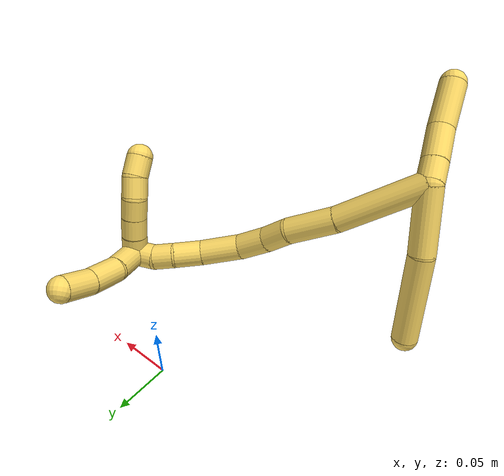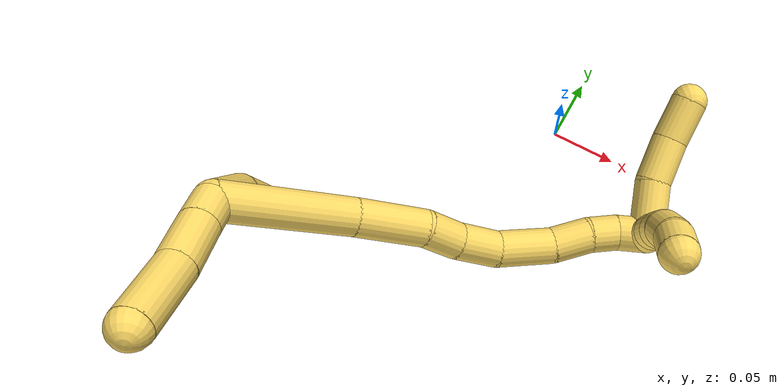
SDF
<sdf version="1.7">
 <world name="default">
  <model name="5">
   <static>0</static>
   <link name="5">
    <collision name="collision-cylinder-e_1_2_8">
     <pose>0.003377 0.01682 -0.026334 -2.57319 0.107646 -0.364768</pose>
     <geometry><cylinder><radius>0.0125</radius><length>0.062858</length></cylinder></geometry>
     <surface>
      <friction><ode><mu>1.16</mu><mu2>1.16</mu2><slip1>0</slip1><slip2>0</slip2></ode></friction>
      <contact><ode><kp>1e+06</kp><kd>1</kd><max_vel>0</max_vel><min_depth>0.001</min_depth></ode></contact>
     </surface>
    </collision>
    <visual name="visual-cylinder-e_1_2_8">
     <pose>0.003377 0.01682 -0.026334 -2.57319 0.107646 -0.364768</pose>
     <geometry><cylinder><radius>0.0125</radius><length>0.062858</length></cylinder></geometry>
     <material><ambient>1 0.858824 0.4 1</ambient></material>
    </visual>
    <collision name="collision-cylinder-e_2_8_6">
     <pose>0.010707 0.063522 -0.084129 -2.38194 0.090866 -0.226792</pose>
     <geometry><cylinder><radius>0.0125</radius><length>0.087142</length></cylinder></geometry>
     <surface>
      <friction><ode><mu>1.16</mu><mu2>1.16</mu2><slip1>0</slip1><slip2>0</slip2></ode></friction>
      <contact><ode><kp>1e+06</kp><kd>1</kd><max_vel>0</max_vel><min_depth>0.001</min_depth></ode></contact>
     </surface>
    </collision>
    <visual name="visual-cylinder-e_2_8_6">
     <pose>0.010707 0.063522 -0.084129 -2.38194 0.090866 -0.226792</pose>
     <geometry><cylinder><radius>0.0125</radius><length>0.087142</length></cylinder></geometry>
     <material><ambient>1 0.858824 0.4 1</ambient></material>
    </visual>
    <collision name="collision-cylinder-e_1_2_9">
     <pose>0.002051 -0.000187 0.010469 0.017901 0.193406 0.001737</pose>
     <geometry><cylinder><radius>0.0125</radius><length>0.021339</length></cylinder></geometry>
     <surface>
      <friction><ode><mu>1.16</mu><mu2>1.16</mu2><slip1>0</slip1><slip2>0</slip2></ode></friction>
      <contact><ode><kp>1e+06</kp><kd>1</kd><max_vel>0</max_vel><min_depth>0.001</min_depth></ode></contact>
     </surface>
    </collision>
    <visual name="visual-cylinder-e_1_2_9">
     <pose>0.002051 -0.000187 0.010469 0.017901 0.193406 0.001737</pose>
     <geometry><cylinder><radius>0.0125</radius><length>0.021339</length></cylinder></geometry>
     <material><ambient>1 0.858824 0.4 1</ambient></material>
    </visual>
    <collision name="collision-cylinder-e_2_9_10">
     <pose>0.00699 -0.000433 0.037308 0.003538 0.174676 0.00031</pose>
     <geometry><cylinder><radius>0.0125</radius><length>0.033247</length></cylinder></geometry>
     <surface>
      <friction><ode><mu>1.16</mu><mu2>1.16</mu2><slip1>0</slip1><slip2>0</slip2></ode></friction>
      <contact><ode><kp>1e+06</kp><kd>1</kd><max_vel>0</max_vel><min_depth>0.001</min_depth></ode></contact>
     </surface>
    </collision>
    <visual name="visual-cylinder-e_2_9_10">
     <pose>0.00699 -0.000433 0.037308 0.003538 0.174676 0.00031</pose>
     <geometry><cylinder><radius>0.0125</radius><length>0.033247</length></cylinder></geometry>
     <material><ambient>1 0.858824 0.4 1</ambient></material>
    </visual>
    <collision name="collision-cylinder-e_3_10_5">
     <pose>0.014389 -0.003332 0.075751 0.128018 0.199952 0.012859</pose>
     <geometry><cylinder><radius>0.0125</radius><length>0.045414</length></cylinder></geometry>
     <surface>
      <friction><ode><mu>1.16</mu><mu2>1.16</mu2><slip1>0</slip1><slip2>0</slip2></ode></friction>
      <contact><ode><kp>1e+06</kp><kd>1</kd><max_vel>0</max_vel><min_depth>0.001</min_depth></ode></contact>
     </surface>
    </collision>
    <visual name="visual-cylinder-e_3_10_5">
     <pose>0.014389 -0.003332 0.075751 0.128018 0.199952 0.012859</pose>
     <geometry><cylinder><radius>0.0125</radius><length>0.045414</length></cylinder></geometry>
     <material><ambient>1 0.858824 0.4 1</ambient></material>
    </visual>
    <collision name="collision-cylinder-e_1_2_11">
     <pose>-0.033448 0.025147 -0.011911 -2.01316 -0.876907 1.27535</pose>
     <geometry><cylinder><radius>0.0125</radius><length>0.087016</length></cylinder></geometry>
     <surface>
      <friction><ode><mu>1.16</mu><mu2>1.16</mu2><slip1>0</slip1><slip2>0</slip2></ode></friction>
      <contact><ode><kp>1e+06</kp><kd>1</kd><max_vel>0</max_vel><min_depth>0.001</min_depth></ode></contact>
     </surface>
    </collision>
    <visual name="visual-cylinder-e_1_2_11">
     <pose>-0.033448 0.025147 -0.011911 -2.01316 -0.876907 1.27535</pose>
     <geometry><cylinder><radius>0.0125</radius><length>0.087016</length></cylinder></geometry>
     <material><ambient>1 0.858824 0.4 1</ambient></material>
    </visual>
    <collision name="collision-cylinder-e_2_11_12">
     <pose>-0.086268 0.063378 -0.027617 -1.85302 -0.957881 1.20962</pose>
     <geometry><cylinder><radius>0.0125</radius><length>0.047368</length></cylinder></geometry>
     <surface>
      <friction><ode><mu>1.16</mu><mu2>1.16</mu2><slip1>0</slip1><slip2>0</slip2></ode></friction>
      <contact><ode><kp>1e+06</kp><kd>1</kd><max_vel>0</max_vel><min_depth>0.001</min_depth></ode></contact>
     </surface>
    </collision>
    <visual name="visual-cylinder-e_2_11_12">
     <pose>-0.086268 0.063378 -0.027617 -1.85302 -0.957881 1.20962</pose>
     <geometry><cylinder><radius>0.0125</radius><length>0.047368</length></cylinder></geometry>
     <material><ambient>1 0.858824 0.4 1</ambient></material>
    </visual>
    <collision name="collision-cylinder-e_3_12_13">
     <pose>-0.114052 0.086108 -0.033583 -1.79237 -0.704958 0.862148</pose>
     <geometry><cylinder><radius>0.0125</radius><length>0.02596</length></cylinder></geometry>
     <surface>
      <friction><ode><mu>1.16</mu><mu2>1.16</mu2><slip1>0</slip1><slip2>0</slip2></ode></friction>
      <contact><ode><kp>1e+06</kp><kd>1</kd><max_vel>0</max_vel><min_depth>0.001</min_depth></ode></contact>
     </surface>
    </collision>
    <visual name="visual-cylinder-e_3_12_13">
     <pose>-0.114052 0.086108 -0.033583 -1.79237 -0.704958 0.862148</pose>
     <geometry><cylinder><radius>0.0125</radius><length>0.02596</length></cylinder></geometry>
     <material><ambient>1 0.858824 0.4 1</ambient></material>
    </visual>
    <collision name="collision-cylinder-e_4_13_14">
     <pose>-0.134267 0.10515 -0.038355 -1.84061 -0.880395 1.1085</pose>
     <geometry><cylinder><radius>0.0125</radius><length>0.030622</length></cylinder></geometry>
     <surface>
      <friction><ode><mu>1.16</mu><mu2>1.16</mu2><slip1>0</slip1><slip2>0</slip2></ode></friction>
      <contact><ode><kp>1e+06</kp><kd>1</kd><max_vel>0</max_vel><min_depth>0.001</min_depth></ode></contact>
     </surface>
    </collision>
    <visual name="visual-cylinder-e_4_13_14">
     <pose>-0.134267 0.10515 -0.038355 -1.84061 -0.880395 1.1085</pose>
     <geometry><cylinder><radius>0.0125</radius><length>0.030622</length></cylinder></geometry>
     <material><ambient>1 0.858824 0.4 1</ambient></material>
    </visual>
    <collision name="collision-cylinder-e_5_14_15">
     <pose>-0.16464 0.121174 -0.044614 -2.07546 -1.18371 1.70086</pose>
     <geometry><cylinder><radius>0.0125</radius><length>0.040103</length></cylinder></geometry>
     <surface>
      <friction><ode><mu>1.16</mu><mu2>1.16</mu2><slip1>0</slip1><slip2>0</slip2></ode></friction>
      <contact><ode><kp>1e+06</kp><kd>1</kd><max_vel>0</max_vel><min_depth>0.001</min_depth></ode></contact>
     </surface>
    </collision>
    <visual name="visual-cylinder-e_5_14_15">
     <pose>-0.16464 0.121174 -0.044614 -2.07546 -1.18371 1.70086</pose>
     <geometry><cylinder><radius>0.0125</radius><length>0.040103</length></cylinder></geometry>
     <material><ambient>1 0.858824 0.4 1</ambient></material>
    </visual>
    <collision name="collision-cylinder-e_6_15_16">
     <pose>-0.196716 0.128945 -0.05115 -2.76256 -1.34552 2.66909</pose>
     <geometry><cylinder><radius>0.0125</radius><length>0.027717</length></cylinder></geometry>
     <surface>
      <friction><ode><mu>1.16</mu><mu2>1.16</mu2><slip1>0</slip1><slip2>0</slip2></ode></friction>
      <contact><ode><kp>1e+06</kp><kd>1</kd><max_vel>0</max_vel><min_depth>0.001</min_depth></ode></contact>
     </surface>
    </collision>
    <visual name="visual-cylinder-e_6_15_16">
     <pose>-0.196716 0.128945 -0.05115 -2.76256 -1.34552 2.66909</pose>
     <geometry><cylinder><radius>0.0125</radius><length>0.027717</length></cylinder></geometry>
     <material><ambient>1 0.858824 0.4 1</ambient></material>
    </visual>
    <collision name="collision-cylinder-e_7_16_17">
     <pose>-0.219817 0.132659 -0.055403 -2.06302 -1.27583 1.78323</pose>
     <geometry><cylinder><radius>0.0125</radius><length>0.020052</length></cylinder></geometry>
     <surface>
      <friction><ode><mu>1.16</mu><mu2>1.16</mu2><slip1>0</slip1><slip2>0</slip2></ode></friction>
      <contact><ode><kp>1e+06</kp><kd>1</kd><max_vel>0</max_vel><min_depth>0.001</min_depth></ode></contact>
     </surface>
    </collision>
    <visual name="visual-cylinder-e_7_16_17">
     <pose>-0.219817 0.132659 -0.055403 -2.06302 -1.27583 1.78323</pose>
     <geometry><cylinder><radius>0.0125</radius><length>0.020052</length></cylinder></geometry>
     <material><ambient>1 0.858824 0.4 1</ambient></material>
    </visual>
    <collision name="collision-cylinder-e_8_17_1">
     <pose>-0.239532 0.13782 -0.055111 -0.998421 -1.27508 0.767733</pose>
     <geometry><cylinder><radius>0.0125</radius><length>0.021163</length></cylinder></geometry>
     <surface>
      <friction><ode><mu>1.16</mu><mu2>1.16</mu2><slip1>0</slip1><slip2>0</slip2></ode></friction>
      <contact><ode><kp>1e+06</kp><kd>1</kd><max_vel>0</max_vel><min_depth>0.001</min_depth></ode></contact>
     </surface>
    </collision>
    <visual name="visual-cylinder-e_8_17_1">
     <pose>-0.239532 0.13782 -0.055111 -0.998421 -1.27508 0.767733</pose>
     <geometry><cylinder><radius>0.0125</radius><length>0.021163</length></cylinder></geometry>
     <material><ambient>1 0.858824 0.4 1</ambient></material>
    </visual>
    <collision name="collision-cylinder-e_1_1_18">
     <pose>-0.255845 0.127908 -0.066071 2.36124 -0.335204 -0.780571</pose>
     <geometry><cylinder><radius>0.0125</radius><length>0.037642</length></cylinder></geometry>
     <surface>
      <friction><ode><mu>1.16</mu><mu2>1.16</mu2><slip1>0</slip1><slip2>0</slip2></ode></friction>
      <contact><ode><kp>1e+06</kp><kd>1</kd><max_vel>0</max_vel><min_depth>0.001</min_depth></ode></contact>
     </surface>
    </collision>
    <visual name="visual-cylinder-e_1_1_18">
     <pose>-0.255845 0.127908 -0.066071 2.36124 -0.335204 -0.780571</pose>
     <geometry><cylinder><radius>0.0125</radius><length>0.037642</length></cylinder></geometry>
     <material><ambient>1 0.858824 0.4 1</ambient></material>
    </visual>
    <collision name="collision-cylinder-e_2_18_19">
     <pose>-0.270911 0.10585 -0.088044 2.34502 -0.586264 -1.2445</pose>
     <geometry><cylinder><radius>0.0125</radius><length>0.032081</length></cylinder></geometry>
     <surface>
      <friction><ode><mu>1.16</mu><mu2>1.16</mu2><slip1>0</slip1><slip2>0</slip2></ode></friction>
      <contact><ode><kp>1e+06</kp><kd>1</kd><max_vel>0</max_vel><min_depth>0.001</min_depth></ode></contact>
     </surface>
    </collision>
    <visual name="visual-cylinder-e_2_18_19">
     <pose>-0.270911 0.10585 -0.088044 2.34502 -0.586264 -1.2445</pose>
     <geometry><cylinder><radius>0.0125</radius><length>0.032081</length></cylinder></geometry>
     <material><ambient>1 0.858824 0.4 1</ambient></material>
    </visual>
    <collision name="collision-cylinder-e_3_19_4">
     <pose>-0.288966 0.086322 -0.104123 2.16482 -0.651565 -1.13268</pose>
     <geometry><cylinder><radius>0.0125</radius><length>0.030278</length></cylinder></geometry>
     <surface>
      <friction><ode><mu>1.16</mu><mu2>1.16</mu2><slip1>0</slip1><slip2>0</slip2></ode></friction>
      <contact><ode><kp>1e+06</kp><kd>1</kd><max_vel>0</max_vel><min_depth>0.001</min_depth></ode></contact>
     </surface>
    </collision>
    <visual name="visual-cylinder-e_3_19_4">
     <pose>-0.288966 0.086322 -0.104123 2.16482 -0.651565 -1.13268</pose>
     <geometry><cylinder><radius>0.0125</radius><length>0.030278</length></cylinder></geometry>
     <material><ambient>1 0.858824 0.4 1</ambient></material>
    </visual>
    <collision name="collision-cylinder-e_1_1_20">
     <pose>-0.250582 0.133066 -0.046718 0.829687 -0.092907 -0.04094</pose>
     <geometry><cylinder><radius>0.0125</radius><length>0.02</length></cylinder></geometry>
     <surface>
      <friction><ode><mu>1.16</mu><mu2>1.16</mu2><slip1>0</slip1><slip2>0</slip2></ode></friction>
      <contact><ode><kp>1e+06</kp><kd>1</kd><max_vel>0</max_vel><min_depth>0.001</min_depth></ode></contact>
     </surface>
    </collision>
    <visual name="visual-cylinder-e_1_1_20">
     <pose>-0.250582 0.133066 -0.046718 0.829687 -0.092907 -0.04094</pose>
     <geometry><cylinder><radius>0.0125</radius><length>0.02</length></cylinder></geometry>
     <material><ambient>1 0.858824 0.4 1</ambient></material>
    </visual>
    <collision name="collision-cylinder-e_2_20_21">
     <pose>-0.252238 0.118866 -0.032753 0.757856 -0.0729 -0.029037</pose>
     <geometry><cylinder><radius>0.0125</radius><length>0.02</length></cylinder></geometry>
     <surface>
      <friction><ode><mu>1.16</mu><mu2>1.16</mu2><slip1>0</slip1><slip2>0</slip2></ode></friction>
      <contact><ode><kp>1e+06</kp><kd>1</kd><max_vel>0</max_vel><min_depth>0.001</min_depth></ode></contact>
     </surface>
    </collision>
    <visual name="visual-cylinder-e_2_20_21">
     <pose>-0.252238 0.118866 -0.032753 0.757856 -0.0729 -0.029037</pose>
     <geometry><cylinder><radius>0.0125</radius><length>0.02</length></cylinder></geometry>
     <material><ambient>1 0.858824 0.4 1</ambient></material>
    </visual>
    <collision name="collision-cylinder-e_3_21_22">
     <pose>-0.253381 0.105274 -0.01813 0.739883 -0.041487 -0.01609</pose>
     <geometry><cylinder><radius>0.0125</radius><length>0.02</length></cylinder></geometry>
     <surface>
      <friction><ode><mu>1.16</mu><mu2>1.16</mu2><slip1>0</slip1><slip2>0</slip2></ode></friction>
      <contact><ode><kp>1e+06</kp><kd>1</kd><max_vel>0</max_vel><min_depth>0.001</min_depth></ode></contact>
     </surface>
    </collision>
    <visual name="visual-cylinder-e_3_21_22">
     <pose>-0.253381 0.105274 -0.01813 0.739883 -0.041487 -0.01609</pose>
     <geometry><cylinder><radius>0.0125</radius><length>0.02</length></cylinder></geometry>
     <material><ambient>1 0.858824 0.4 1</ambient></material>
    </visual>
    <collision name="collision-cylinder-e_4_22_23">
     <pose>-0.254677 0.094254 -0.001758 0.444549 -0.0882 -0.019946</pose>
     <geometry><cylinder><radius>0.0125</radius><length>0.02</length></cylinder></geometry>
     <surface>
      <friction><ode><mu>1.16</mu><mu2>1.16</mu2><slip1>0</slip1><slip2>0</slip2></ode></friction>
      <contact><ode><kp>1e+06</kp><kd>1</kd><max_vel>0</max_vel><min_depth>0.001</min_depth></ode></contact>
     </surface>
    </collision>
    <visual name="visual-cylinder-e_4_22_23">
     <pose>-0.254677 0.094254 -0.001758 0.444549 -0.0882 -0.019946</pose>
     <geometry><cylinder><radius>0.0125</radius><length>0.02</length></cylinder></geometry>
     <material><ambient>1 0.858824 0.4 1</ambient></material>
    </visual>
    <collision name="collision-cylinder-e_5_23_3">
     <pose>-0.254622 0.087654 0.016918 0.234756 0.09368 0.011055</pose>
     <geometry><cylinder><radius>0.0125</radius><length>0.02</length></cylinder></geometry>
     <surface>
      <friction><ode><mu>1.16</mu><mu2>1.16</mu2><slip1>0</slip1><slip2>0</slip2></ode></friction>
      <contact><ode><kp>1e+06</kp><kd>1</kd><max_vel>0</max_vel><min_depth>0.001</min_depth></ode></contact>
     </surface>
    </collision>
    <visual name="visual-cylinder-e_5_23_3">
     <pose>-0.254622 0.087654 0.016918 0.234756 0.09368 0.011055</pose>
     <geometry><cylinder><radius>0.0125</radius><length>0.02</length></cylinder></geometry>
     <material><ambient>1 0.858824 0.4 1</ambient></material>
    </visual>
    <collision name="collision-sphere-3">
     <pose>-0.253687 0.085339 0.026602 0 -0 0</pose>
     <geometry><sphere><radius>0.0125</radius></sphere></geometry>
     <surface>
      <friction><ode><mu>1.16</mu><mu2>1.16</mu2><slip1>0</slip1><slip2>0</slip2></ode></friction>
      <contact><ode><kp>1e+06</kp><kd>1</kd><max_vel>0</max_vel><min_depth>0.001</min_depth></ode></contact>
     </surface>
    </collision>
    <visual name="visual-sphere-3">
     <pose>-0.253687 0.085339 0.026602 0 -0 0</pose>
     <geometry><sphere><radius>0.0125</radius></sphere></geometry>
     <material><ambient>1 0.858824 0.4 1</ambient></material>
    </visual>
    <collision name="collision-sphere-23">
     <pose>-0.255557 0.08997 0.007235 0 -0 0</pose>
     <geometry><sphere><radius>0.0125</radius></sphere></geometry>
     <surface>
      <friction><ode><mu>1.16</mu><mu2>1.16</mu2><slip1>0</slip1><slip2>0</slip2></ode></friction>
      <contact><ode><kp>1e+06</kp><kd>1</kd><max_vel>0</max_vel><min_depth>0.001</min_depth></ode></contact>
     </surface>
    </collision>
    <visual name="visual-sphere-23">
     <pose>-0.255557 0.08997 0.007235 0 -0 0</pose>
     <geometry><sphere><radius>0.0125</radius></sphere></geometry>
     <material><ambient>1 0.858824 0.4 1</ambient></material>
    </visual>
    <collision name="collision-sphere-22">
     <pose>-0.253796 0.098538 -0.010751 0 -0 0</pose>
     <geometry><sphere><radius>0.0125</radius></sphere></geometry>
     <surface>
      <friction><ode><mu>1.16</mu><mu2>1.16</mu2><slip1>0</slip1><slip2>0</slip2></ode></friction>
      <contact><ode><kp>1e+06</kp><kd>1</kd><max_vel>0</max_vel><min_depth>0.001</min_depth></ode></contact>
     </surface>
    </collision>
    <visual name="visual-sphere-22">
     <pose>-0.253796 0.098538 -0.010751 0 -0 0</pose>
     <geometry><sphere><radius>0.0125</radius></sphere></geometry>
     <material><ambient>1 0.858824 0.4 1</ambient></material>
    </visual>
    <collision name="collision-sphere-21">
     <pose>-0.252966 0.11201 -0.025509 0 -0 0</pose>
     <geometry><sphere><radius>0.0125</radius></sphere></geometry>
     <surface>
      <friction><ode><mu>1.16</mu><mu2>1.16</mu2><slip1>0</slip1><slip2>0</slip2></ode></friction>
      <contact><ode><kp>1e+06</kp><kd>1</kd><max_vel>0</max_vel><min_depth>0.001</min_depth></ode></contact>
     </surface>
    </collision>
    <visual name="visual-sphere-21">
     <pose>-0.252966 0.11201 -0.025509 0 -0 0</pose>
     <geometry><sphere><radius>0.0125</radius></sphere></geometry>
     <material><ambient>1 0.858824 0.4 1</ambient></material>
    </visual>
    <collision name="collision-sphere-20">
     <pose>-0.25151 0.125721 -0.039996 0 -0 0</pose>
     <geometry><sphere><radius>0.0125</radius></sphere></geometry>
     <surface>
      <friction><ode><mu>1.16</mu><mu2>1.16</mu2><slip1>0</slip1><slip2>0</slip2></ode></friction>
      <contact><ode><kp>1e+06</kp><kd>1</kd><max_vel>0</max_vel><min_depth>0.001</min_depth></ode></contact>
     </surface>
    </collision>
    <visual name="visual-sphere-20">
     <pose>-0.25151 0.125721 -0.039996 0 -0 0</pose>
     <geometry><sphere><radius>0.0125</radius></sphere></geometry>
     <material><ambient>1 0.858824 0.4 1</ambient></material>
    </visual>
    <collision name="collision-sphere-4">
     <pose>-0.298147 0.076346 -0.110861 0 -0 0</pose>
     <geometry><sphere><radius>0.0125</radius></sphere></geometry>
     <surface>
      <friction><ode><mu>1.16</mu><mu2>1.16</mu2><slip1>0</slip1><slip2>0</slip2></ode></friction>
      <contact><ode><kp>1e+06</kp><kd>1</kd><max_vel>0</max_vel><min_depth>0.001</min_depth></ode></contact>
     </surface>
    </collision>
    <visual name="visual-sphere-4">
     <pose>-0.298147 0.076346 -0.110861 0 -0 0</pose>
     <geometry><sphere><radius>0.0125</radius></sphere></geometry>
     <material><ambient>1 0.858824 0.4 1</ambient></material>
    </visual>
    <collision name="collision-sphere-5">
     <pose>0.0189 -0.006173 0.097824 0 -0 0</pose>
     <geometry><sphere><radius>0.0125</radius></sphere></geometry>
     <surface>
      <friction><ode><mu>1.16</mu><mu2>1.16</mu2><slip1>0</slip1><slip2>0</slip2></ode></friction>
      <contact><ode><kp>1e+06</kp><kd>1</kd><max_vel>0</max_vel><min_depth>0.001</min_depth></ode></contact>
     </surface>
    </collision>
    <visual name="visual-sphere-5">
     <pose>0.0189 -0.006173 0.097824 0 -0 0</pose>
     <geometry><sphere><radius>0.0125</radius></sphere></geometry>
     <material><ambient>1 0.858824 0.4 1</ambient></material>
    </visual>
    <collision name="collision-sphere-10">
     <pose>0.009879 -0.000491 0.053678 0 -0 0</pose>
     <geometry><sphere><radius>0.0125</radius></sphere></geometry>
     <surface>
      <friction><ode><mu>1.16</mu><mu2>1.16</mu2><slip1>0</slip1><slip2>0</slip2></ode></friction>
      <contact><ode><kp>1e+06</kp><kd>1</kd><max_vel>0</max_vel><min_depth>0.001</min_depth></ode></contact>
     </surface>
    </collision>
    <visual name="visual-sphere-10">
     <pose>0.009879 -0.000491 0.053678 0 -0 0</pose>
     <geometry><sphere><radius>0.0125</radius></sphere></geometry>
     <material><ambient>1 0.858824 0.4 1</ambient></material>
    </visual>
    <collision name="collision-sphere-6">
     <pose>0.014661 0.093405 -0.115591 0 -0 0</pose>
     <geometry><sphere><radius>0.0125</radius></sphere></geometry>
     <surface>
      <friction><ode><mu>1.16</mu><mu2>1.16</mu2><slip1>0</slip1><slip2>0</slip2></ode></friction>
      <contact><ode><kp>1e+06</kp><kd>1</kd><max_vel>0</max_vel><min_depth>0.001</min_depth></ode></contact>
     </surface>
    </collision>
    <visual name="visual-sphere-6">
     <pose>0.014661 0.093405 -0.115591 0 -0 0</pose>
     <geometry><sphere><radius>0.0125</radius></sphere></geometry>
     <material><ambient>1 0.858824 0.4 1</ambient></material>
    </visual>
    <collision name="collision-sphere-9">
     <pose>0.004101 -0.000375 0.020937 0 -0 0</pose>
     <geometry><sphere><radius>0.0125</radius></sphere></geometry>
     <surface>
      <friction><ode><mu>1.16</mu><mu2>1.16</mu2><slip1>0</slip1><slip2>0</slip2></ode></friction>
      <contact><ode><kp>1e+06</kp><kd>1</kd><max_vel>0</max_vel><min_depth>0.001</min_depth></ode></contact>
     </surface>
    </collision>
    <visual name="visual-sphere-9">
     <pose>0.004101 -0.000375 0.020937 0 -0 0</pose>
     <geometry><sphere><radius>0.0125</radius></sphere></geometry>
     <material><ambient>1 0.858824 0.4 1</ambient></material>
    </visual>
    <collision name="collision-sphere-2">
     <geometry><sphere><radius>0.0125</radius></sphere></geometry>
     <surface>
      <friction><ode><mu>1.16</mu><mu2>1.16</mu2><slip1>0</slip1><slip2>0</slip2></ode></friction>
      <contact><ode><kp>1e+06</kp><kd>1</kd><max_vel>0</max_vel><min_depth>0.001</min_depth></ode></contact>
     </surface>
    </collision>
    <visual name="visual-sphere-2">
     <geometry><sphere><radius>0.0125</radius></sphere></geometry>
     <material><ambient>1 0.858824 0.4 1</ambient></material>
    </visual>
    <collision name="collision-sphere-19">
     <pose>-0.279786 0.096297 -0.097386 0 -0 0</pose>
     <geometry><sphere><radius>0.0125</radius></sphere></geometry>
     <surface>
      <friction><ode><mu>1.16</mu><mu2>1.16</mu2><slip1>0</slip1><slip2>0</slip2></ode></friction>
      <contact><ode><kp>1e+06</kp><kd>1</kd><max_vel>0</max_vel><min_depth>0.001</min_depth></ode></contact>
     </surface>
    </collision>
    <visual name="visual-sphere-19">
     <pose>-0.279786 0.096297 -0.097386 0 -0 0</pose>
     <geometry><sphere><radius>0.0125</radius></sphere></geometry>
     <material><ambient>1 0.858824 0.4 1</ambient></material>
    </visual>
    <collision name="collision-sphere-8">
     <pose>0.006753 0.03364 -0.052668 0 -0 0</pose>
     <geometry><sphere><radius>0.0125</radius></sphere></geometry>
     <surface>
      <friction><ode><mu>1.16</mu><mu2>1.16</mu2><slip1>0</slip1><slip2>0</slip2></ode></friction>
      <contact><ode><kp>1e+06</kp><kd>1</kd><max_vel>0</max_vel><min_depth>0.001</min_depth></ode></contact>
     </surface>
    </collision>
    <visual name="visual-sphere-8">
     <pose>0.006753 0.03364 -0.052668 0 -0 0</pose>
     <geometry><sphere><radius>0.0125</radius></sphere></geometry>
     <material><ambient>1 0.858824 0.4 1</ambient></material>
    </visual>
    <collision name="collision-sphere-11">
     <pose>-0.066895 0.050293 -0.023822 0 -0 0</pose>
     <geometry><sphere><radius>0.0125</radius></sphere></geometry>
     <surface>
      <friction><ode><mu>1.16</mu><mu2>1.16</mu2><slip1>0</slip1><slip2>0</slip2></ode></friction>
      <contact><ode><kp>1e+06</kp><kd>1</kd><max_vel>0</max_vel><min_depth>0.001</min_depth></ode></contact>
     </surface>
    </collision>
    <visual name="visual-sphere-11">
     <pose>-0.066895 0.050293 -0.023822 0 -0 0</pose>
     <geometry><sphere><radius>0.0125</radius></sphere></geometry>
     <material><ambient>1 0.858824 0.4 1</ambient></material>
    </visual>
    <collision name="collision-sphere-12">
     <pose>-0.105641 0.076464 -0.031411 0 -0 0</pose>
     <geometry><sphere><radius>0.0125</radius></sphere></geometry>
     <surface>
      <friction><ode><mu>1.16</mu><mu2>1.16</mu2><slip1>0</slip1><slip2>0</slip2></ode></friction>
      <contact><ode><kp>1e+06</kp><kd>1</kd><max_vel>0</max_vel><min_depth>0.001</min_depth></ode></contact>
     </surface>
    </collision>
    <visual name="visual-sphere-12">
     <pose>-0.105641 0.076464 -0.031411 0 -0 0</pose>
     <geometry><sphere><radius>0.0125</radius></sphere></geometry>
     <material><ambient>1 0.858824 0.4 1</ambient></material>
    </visual>
    <collision name="collision-sphere-13">
     <pose>-0.122463 0.095752 -0.035756 0 -0 0</pose>
     <geometry><sphere><radius>0.0125</radius></sphere></geometry>
     <surface>
      <friction><ode><mu>1.16</mu><mu2>1.16</mu2><slip1>0</slip1><slip2>0</slip2></ode></friction>
      <contact><ode><kp>1e+06</kp><kd>1</kd><max_vel>0</max_vel><min_depth>0.001</min_depth></ode></contact>
     </surface>
    </collision>
    <visual name="visual-sphere-13">
     <pose>-0.122463 0.095752 -0.035756 0 -0 0</pose>
     <geometry><sphere><radius>0.0125</radius></sphere></geometry>
     <material><ambient>1 0.858824 0.4 1</ambient></material>
    </visual>
    <collision name="collision-sphere-14">
     <pose>-0.146072 0.114548 -0.040954 0 -0 0</pose>
     <geometry><sphere><radius>0.0125</radius></sphere></geometry>
     <surface>
      <friction><ode><mu>1.16</mu><mu2>1.16</mu2><slip1>0</slip1><slip2>0</slip2></ode></friction>
      <contact><ode><kp>1e+06</kp><kd>1</kd><max_vel>0</max_vel><min_depth>0.001</min_depth></ode></contact>
     </surface>
    </collision>
    <visual name="visual-sphere-14">
     <pose>-0.146072 0.114548 -0.040954 0 -0 0</pose>
     <geometry><sphere><radius>0.0125</radius></sphere></geometry>
     <material><ambient>1 0.858824 0.4 1</ambient></material>
    </visual>
    <collision name="collision-sphere-15">
     <pose>-0.183208 0.127799 -0.048274 0 -0 0</pose>
     <geometry><sphere><radius>0.0125</radius></sphere></geometry>
     <surface>
      <friction><ode><mu>1.16</mu><mu2>1.16</mu2><slip1>0</slip1><slip2>0</slip2></ode></friction>
      <contact><ode><kp>1e+06</kp><kd>1</kd><max_vel>0</max_vel><min_depth>0.001</min_depth></ode></contact>
     </surface>
    </collision>
    <visual name="visual-sphere-15">
     <pose>-0.183208 0.127799 -0.048274 0 -0 0</pose>
     <geometry><sphere><radius>0.0125</radius></sphere></geometry>
     <material><ambient>1 0.858824 0.4 1</ambient></material>
    </visual>
    <collision name="collision-sphere-16">
     <pose>-0.210224 0.13009 -0.054026 0 -0 0</pose>
     <geometry><sphere><radius>0.0125</radius></sphere></geometry>
     <surface>
      <friction><ode><mu>1.16</mu><mu2>1.16</mu2><slip1>0</slip1><slip2>0</slip2></ode></friction>
      <contact><ode><kp>1e+06</kp><kd>1</kd><max_vel>0</max_vel><min_depth>0.001</min_depth></ode></contact>
     </surface>
    </collision>
    <visual name="visual-sphere-16">
     <pose>-0.210224 0.13009 -0.054026 0 -0 0</pose>
     <geometry><sphere><radius>0.0125</radius></sphere></geometry>
     <material><ambient>1 0.858824 0.4 1</ambient></material>
    </visual>
    <collision name="collision-sphere-17">
     <pose>-0.22941 0.135228 -0.056781 0 -0 0</pose>
     <geometry><sphere><radius>0.0125</radius></sphere></geometry>
     <surface>
      <friction><ode><mu>1.16</mu><mu2>1.16</mu2><slip1>0</slip1><slip2>0</slip2></ode></friction>
      <contact><ode><kp>1e+06</kp><kd>1</kd><max_vel>0</max_vel><min_depth>0.001</min_depth></ode></contact>
     </surface>
    </collision>
    <visual name="visual-sphere-17">
     <pose>-0.22941 0.135228 -0.056781 0 -0 0</pose>
     <geometry><sphere><radius>0.0125</radius></sphere></geometry>
     <material><ambient>1 0.858824 0.4 1</ambient></material>
    </visual>
    <collision name="collision-sphere-1">
     <pose>-0.249654 0.140412 -0.05344 0 -0 0</pose>
     <geometry><sphere><radius>0.0125</radius></sphere></geometry>
     <surface>
      <friction><ode><mu>1.16</mu><mu2>1.16</mu2><slip1>0</slip1><slip2>0</slip2></ode></friction>
      <contact><ode><kp>1e+06</kp><kd>1</kd><max_vel>0</max_vel><min_depth>0.001</min_depth></ode></contact>
     </surface>
    </collision>
    <visual name="visual-sphere-1">
     <pose>-0.249654 0.140412 -0.05344 0 -0 0</pose>
     <geometry><sphere><radius>0.0125</radius></sphere></geometry>
     <material><ambient>1 0.858824 0.4 1</ambient></material>
    </visual>
    <collision name="collision-sphere-18">
     <pose>-0.262037 0.115404 -0.078702 0 -0 0</pose>
     <geometry><sphere><radius>0.0125</radius></sphere></geometry>
     <surface>
      <friction><ode><mu>1.16</mu><mu2>1.16</mu2><slip1>0</slip1><slip2>0</slip2></ode></friction>
      <contact><ode><kp>1e+06</kp><kd>1</kd><max_vel>0</max_vel><min_depth>0.001</min_depth></ode></contact>
     </surface>
    </collision>
    <visual name="visual-sphere-18">
     <pose>-0.262037 0.115404 -0.078702 0 -0 0</pose>
     <geometry><sphere><radius>0.0125</radius></sphere></geometry>
     <material><ambient>1 0.858824 0.4 1</ambient></material>
    </visual>
    <inertial>
     <pose>-0.114542 0.070246 -0.032094 0 -0 0</pose>
     <mass>0.75</mass>
     <inertia>
      <ixx>0.000118</ixx>
      <ixy>0</ixy>
      <ixz>0</ixz>
      <iyy>4.1e-05</iyy>
      <iyz>0</iyz>
      <izz>-2.4e-05</izz>
     </inertia>
    </inertial>
   </link>
   <pose>-0.132122 -0.206783 0.152779 -1.02753 0.158113 -2.47717</pose>
  </model>
 </world>
</sdf>
